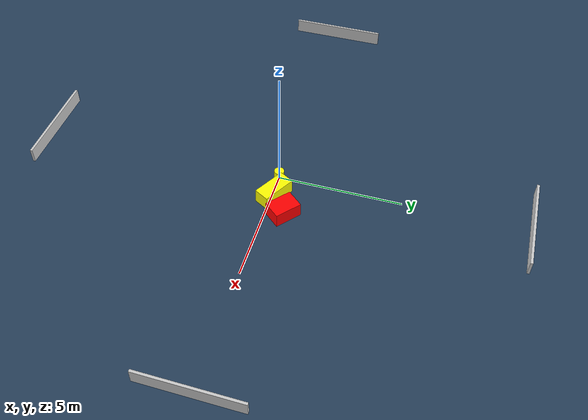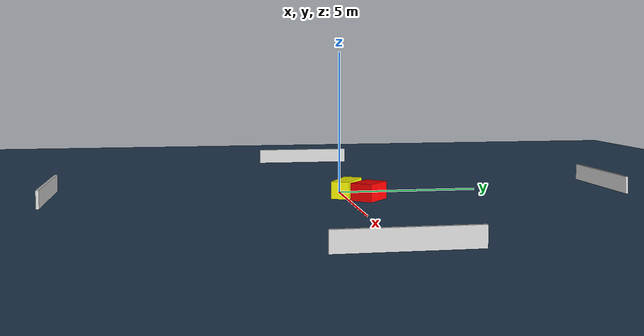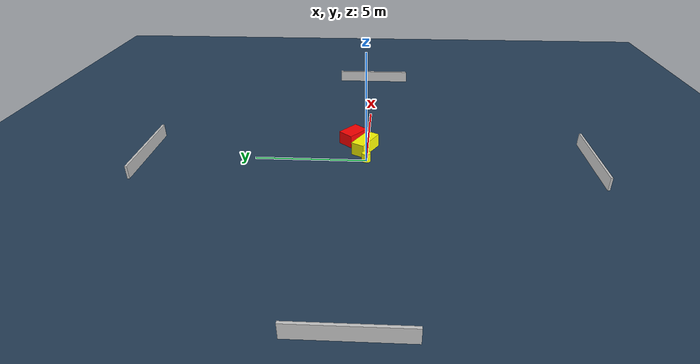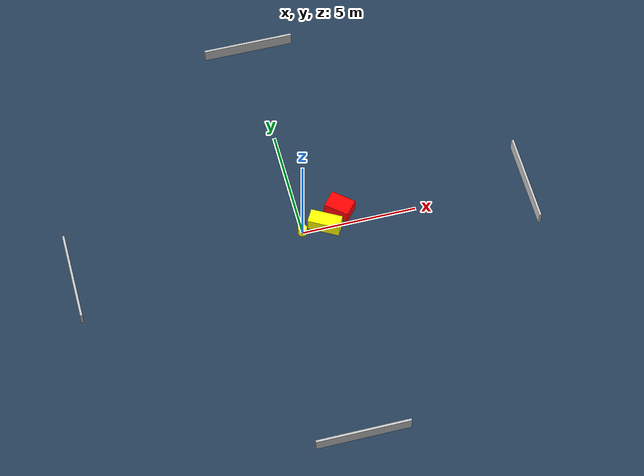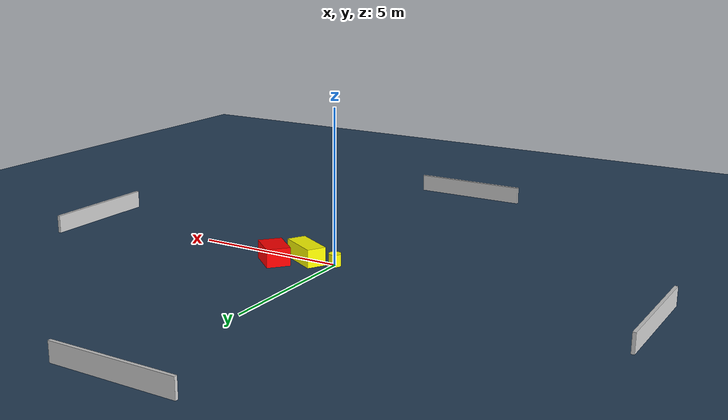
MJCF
<?xml version="1.0" ?>
<mujoco model="generated_environment">
  <option timestep="0.01" integrator="RK4" cone="elliptic"/>
  <default>
    <geom density="1"/>
  </default>
  <asset>
    <texture builtin="gradient" height="3072" name="skybox" rgb1="0.3 0.5 0.7" rgb2="0 0 0" type="skybox" width="512"/>
    <texture builtin="checker" height="300" name="groundplane" rgb1="0.2 0.3 0.4" rgb2="0.1 0.2 0.3" type="2d" width="300"/>
    <material name="groundplane" reflectance="0.2" texrepeat="5 5" texture="groundplane"/>
  </asset>
  <worldbody>
    <light dir="0 0 -1" directional="true" pos="0 0 1.5"/>
    <geom condim="3" friction="0.5 0.005 0.001" material="groundplane" name="floor" pos="0 0 0" size="0 0 0.05" type="plane"/>
    <body name="walls">
      <geom name="wall_1" condim="4" pos="-10.0 0.0 0.3" rgba="0.800000011920929 0.800000011920929 0.800000011920929 1.0" size="0.05 2.0 0.3" type="box"/>
      <geom name="wall_2" condim="4" pos="10.0 0.0 0.3" rgba="0.800000011920929 0.800000011920929 0.800000011920929 1.0" size="0.05 2.0 0.3" type="box"/>
      <geom name="wall_3" condim="4" pos="0.0 -10.0 0.3" rgba="0.800000011920929 0.800000011920929 0.800000011920929 1.0" size="2.0 0.05 0.3" type="box"/>
      <geom name="wall_4" condim="4" pos="0.0 10.0 0.3" rgba="0.800000011920929 0.800000011920929 0.800000011920929 1.0" size="2.0 0.05 0.3" type="box"/>
    </body>
    <body name="robot">
      <joint name="joint_x" type="slide" pos="0 0 0" axis="1 0 0"/>
      <joint name="joint_y" type="slide" pos="0 0 0" axis="0 1 0"/>
      <geom name="robot" type="cylinder" pos="0.0 0.0 0.2" size="0.2 0.2 0.0" mass="5.0" friction="1.0 0.005 0.0001" condim="4" rgba="1.0 1.0 0.0 1.0"/>
    </body>
    <body name="obstacle_1_movable">
      <geom name="obstacle_1_movable" condim="4" pos="1.015938187783105 0.09089782254455617 0.3" euler="0 0 150.7612588106653" friction="0.0 0.005 0.001" rgba="1.0 1.0 0.0 1.0" size="0.6968967344371665 0.31427985964112104 0.3" type="box" mass="0.1"/>
      <joint type="free"/>
    </body>
    <body name="obstacle_2_static">
      <geom name="obstacle_2_static" condim="4" pos="1.8299316862130162 0.7025082788472806 0.3" euler="0 0 229.53818820679086" friction="0.0 0.005 0.001" rgba="1.0 0.0 0.0 1.0" size="0.3887036176015479 0.5502333337349214 0.3" type="box"/>
    </body>
  </worldbody>
  <actuator>
    <motor name="actuator_x" joint="joint_x" gear="1" ctrlrange="-1 1"/>
    <motor name="actuator_y" joint="joint_y" gear="1" ctrlrange="-1 1"/>
  </actuator>
</mujoco>
